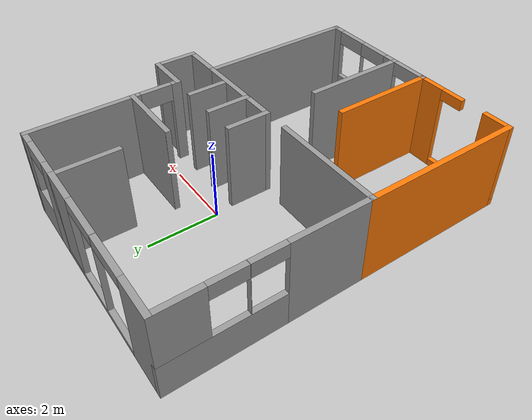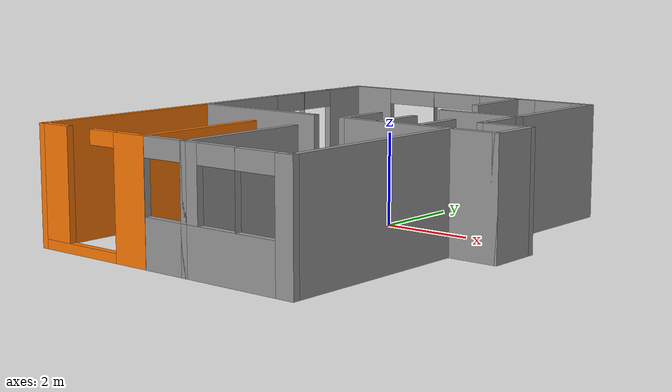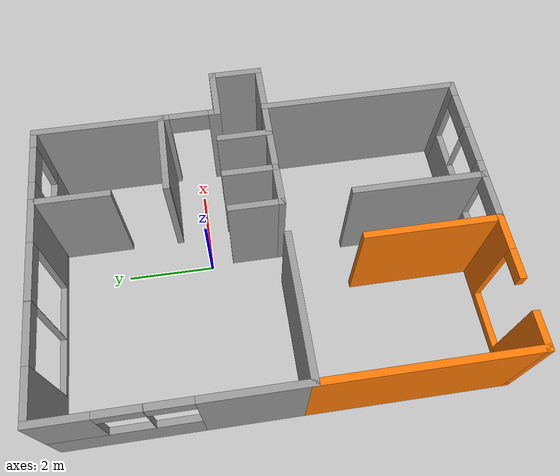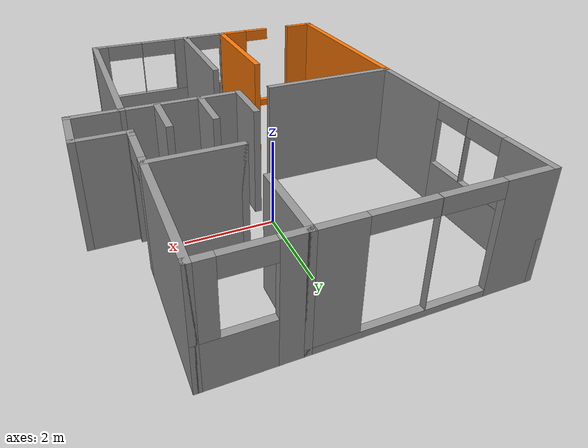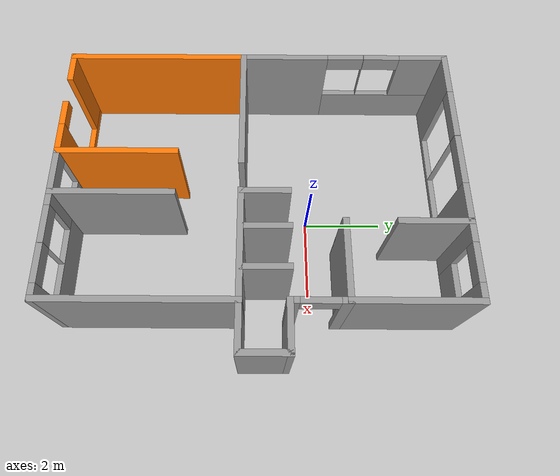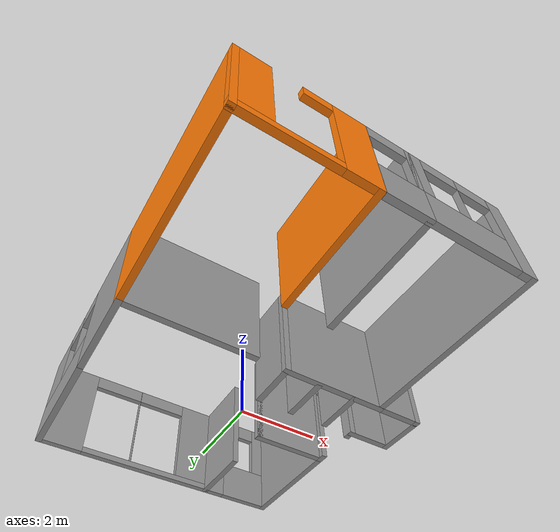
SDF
<?xml version='1.0'?>
<sdf version='1.6'>
  <model name='Berkach'>
    <pose frame=''>0.04 -1.29 0 0 -0 0</pose>
    <link name='Wall_0'>
      <collision name='Wall_0_Collision'>
        <geometry>
          <box>
            <size>4.6 0.15 2.5</size>
          </box>
        </geometry>
        <pose frame=''>0 0 1.25 0 -0 0</pose>
      </collision>
      <visual name='Wall_0_Visual'>
        <pose frame=''>0 0 1.25 0 -0 0</pose>
        <geometry>
          <box>
            <size>4.6 0.15 2.5</size>
          </box>
        </geometry>
        <material>
          <script>
            <uri>file://media/materials/scripts/gazebo.material</uri>
            <name>Gazebo/Grey</name>
          </script>
          <ambient>1 1 1 1</ambient>
        </material>
      </visual>
      <pose frame=''>2.7 -2.625 0 0 0 -1.5708</pose>
    </link>
    <link name='Wall_11'>
      <collision name='Wall_11_Collision'>
        <geometry>
          <box>
            <size>3 0.15 2.5</size>
          </box>
        </geometry>
        <pose frame=''>0 0 1.25 0 -0 0</pose>
      </collision>
      <visual name='Wall_11_Visual'>
        <pose frame=''>0 0 1.25 0 -0 0</pose>
        <geometry>
          <box>
            <size>3 0.15 2.5</size>
          </box>
        </geometry>
        <material>
          <script>
            <uri>file://media/materials/scripts/gazebo.material</uri>
            <name>Gazebo/Grey</name>
          </script>
          <ambient>0.996078 0.47451 0.0196078 1</ambient>
        </material>
      </visual>
      <pose frame=''>-0.95 -3.425 0 0 0 -1.5708</pose>
    </link>
    <link name='Wall_12'>
      <pose frame=''>-2.375 -4.85 0 0 -0 3.14159</pose>
      <visual name='Wall_12_Visual_0'>
        <pose frame=''>-1.0895 0 1.25 0 -0 0</pose>
        <geometry>
          <box>
            <size>0.820991 0.15 2.5</size>
          </box>
        </geometry>
        <material>
          <script>
            <uri>file://media/materials/scripts/gazebo.material</uri>
            <name>Gazebo/Grey</name>
          </script>
          <ambient>0.996078 0.47451 0.0196078 1</ambient>
        </material>
      </visual>
      <collision name='Wall_12_Collision_0'>
        <geometry>
          <box>
            <size>0.820991 0.15 2.5</size>
          </box>
        </geometry>
        <pose frame=''>-1.0895 0 1.25 0 -0 0</pose>
      </collision>
      <visual name='Wall_12_Visual_1'>
        <pose frame=''>0.410495 0 0.1 0 -0 0</pose>
        <geometry>
          <box>
            <size>2.17901 0.15 0.2</size>
          </box>
        </geometry>
        <material>
          <script>
            <uri>file://media/materials/scripts/gazebo.material</uri>
            <name>Gazebo/Grey</name>
          </script>
          <ambient>0.996078 0.47451 0.0196078 1</ambient>
        </material>
      </visual>
      <collision name='Wall_12_Collision_1'>
        <geometry>
          <box>
            <size>2.17901 0.15 0.2</size>
          </box>
        </geometry>
        <pose frame=''>0.410495 0 0.1 0 -0 0</pose>
      </collision>
      <visual name='Wall_12_Visual_2'>
        <pose frame=''>1.08284 0 1.35 0 -0 0</pose>
        <geometry>
          <box>
            <size>0.834315 0.15 2.3</size>
          </box>
        </geometry>
        <material>
          <script>
            <uri>file://media/materials/scripts/gazebo.material</uri>
            <name>Gazebo/Grey</name>
          </script>
          <ambient>0.996078 0.47451 0.0196078 1</ambient>
        </material>
      </visual>
      <collision name='Wall_12_Collision_2'>
        <geometry>
          <box>
            <size>0.834315 0.15 2.3</size>
          </box>
        </geometry>
        <pose frame=''>1.08284 0 1.35 0 -0 0</pose>
      </collision>
      <visual name='Wall_12_Visual_3'>
        <pose frame=''>-0.344162 0 2.35 0 -0 0</pose>
        <geometry>
          <box>
            <size>0.669694 0.15 0.3</size>
          </box>
        </geometry>
        <material>
          <script>
            <uri>file://media/materials/scripts/gazebo.material</uri>
            <name>Gazebo/Grey</name>
          </script>
          <ambient>0.996078 0.47451 0.0196078 1</ambient>
        </material>
      </visual>
      <collision name='Wall_12_Collision_3'>
        <geometry>
          <box>
            <size>0.669694 0.15 0.3</size>
          </box>
        </geometry>
        <pose frame=''>-0.344162 0 2.35 0 -0 0</pose>
      </collision>
    </link>
    <link name='Wall_13'>
      <collision name='Wall_13_Collision'>
        <geometry>
          <box>
            <size>4.6 0.15 2.5</size>
          </box>
        </geometry>
        <pose frame=''>0 0 1.25 0 -0 0</pose>
      </collision>
      <visual name='Wall_13_Visual'>
        <pose frame=''>0 0 1.25 0 -0 0</pose>
        <geometry>
          <box>
            <size>4.6 0.15 2.5</size>
          </box>
        </geometry>
        <material>
          <script>
            <uri>file://media/materials/scripts/gazebo.material</uri>
            <name>Gazebo/Grey</name>
          </script>
          <ambient>0.996078 0.47451 0.0196078 1</ambient>
        </material>
      </visual>
      <pose frame=''>-3.8 -2.625 0 0 -0 1.5708</pose>
    </link>
    <link name='Wall_15'>
      <collision name='Wall_15_Collision'>
        <geometry>
          <box>
            <size>3.25 0.15 2.5</size>
          </box>
        </geometry>
        <pose frame=''>0 0 1.25 0 -0 0</pose>
      </collision>
      <visual name='Wall_15_Visual'>
        <pose frame=''>0 0 1.25 0 -0 0</pose>
        <geometry>
          <box>
            <size>3.25 0.15 2.5</size>
          </box>
        </geometry>
        <material>
          <script>
            <uri>file://media/materials/scripts/gazebo.material</uri>
            <name>Gazebo/Grey</name>
          </script>
          <ambient>1 1 1 1</ambient>
        </material>
      </visual>
      <pose frame=''>-2.25 -0.4 0 0 -0 0</pose>
    </link>
    <link name='Wall_17'>
      <collision name='Wall_17_Collision'>
        <geometry>
          <box>
            <size>1.25 0.15 2.5</size>
          </box>
        </geometry>
        <pose frame=''>0 0 1.25 0 -0 0</pose>
      </collision>
      <visual name='Wall_17_Visual'>
        <pose frame=''>0 0 1.25 0 -0 0</pose>
        <geometry>
          <box>
            <size>1.25 0.15 2.5</size>
          </box>
        </geometry>
        <material>
          <script>
            <uri>file://media/materials/scripts/gazebo.material</uri>
            <name>Gazebo/Grey</name>
          </script>
          <ambient>1 1 1 1</ambient>
        </material>
      </visual>
      <pose frame=''>0.1 0.15 0 0 -0 1.5708</pose>
    </link>
    <link name='Wall_19'>
      <pose frame=''>-3.8 2.225 0 0 -0 1.5708</pose>
      <visual name='Wall_19_Visual_0'>
        <pose frame=''>-1.56095 0 1.25 0 -0 0</pose>
        <geometry>
          <box>
            <size>2.27809 0.15 2.5</size>
          </box>
        </geometry>
        <material>
          <script>
            <uri>file://media/materials/scripts/gazebo.material</uri>
            <name>Gazebo/Grey</name>
          </script>
          <ambient>1 1 1 1</ambient>
        </material>
      </visual>
      <collision name='Wall_19_Collision_0'>
        <geometry>
          <box>
            <size>2.27809 0.15 2.5</size>
          </box>
        </geometry>
        <pose frame=''>-1.56095 0 1.25 0 -0 0</pose>
      </collision>
      <visual name='Wall_19_Visual_1'>
        <pose frame=''>1.13905 0 0.5 0 -0 0</pose>
        <geometry>
          <box>
            <size>3.12191 0.15 1</size>
          </box>
        </geometry>
        <material>
          <script>
            <uri>file://media/materials/scripts/gazebo.material</uri>
            <name>Gazebo/Grey</name>
          </script>
          <ambient>1 1 1 1</ambient>
        </material>
      </visual>
      <collision name='Wall_19_Collision_1'>
        <geometry>
          <box>
            <size>3.12191 0.15 1</size>
          </box>
        </geometry>
        <pose frame=''>1.13905 0 0.5 0 -0 0</pose>
      </collision>
      <visual name='Wall_19_Visual_2'>
        <pose frame=''>0.51258 0 1.75 0 -0 0</pose>
        <geometry>
          <box>
            <size>0.008975 0.15 1.5</size>
          </box>
        </geometry>
        <material>
          <script>
            <uri>file://media/materials/scripts/gazebo.material</uri>
            <name>Gazebo/Grey</name>
          </script>
          <ambient>1 1 1 1</ambient>
        </material>
      </visual>
      <collision name='Wall_19_Collision_2'>
        <geometry>
          <box>
            <size>0.008975 0.15 1.5</size>
          </box>
        </geometry>
        <pose frame=''>0.51258 0 1.75 0 -0 0</pose>
      </collision>
      <visual name='Wall_19_Visual_3'>
        <pose frame=''>2.07353 0 1.75 0 -0 0</pose>
        <geometry>
          <box>
            <size>1.25293 0.15 1.5</size>
          </box>
        </geometry>
        <material>
          <script>
            <uri>file://media/materials/scripts/gazebo.material</uri>
            <name>Gazebo/Grey</name>
          </script>
          <ambient>1 1 1 1</ambient>
        </material>
      </visual>
      <collision name='Wall_19_Collision_3'>
        <geometry>
          <box>
            <size>1.25293 0.15 1.5</size>
          </box>
        </geometry>
        <pose frame=''>2.07353 0 1.75 0 -0 0</pose>
      </collision>
      <visual name='Wall_19_Visual_4'>
        <pose frame=''>0.043092 0 2.3 0 -0 0</pose>
        <geometry>
          <box>
            <size>0.93 0.15 0.4</size>
          </box>
        </geometry>
        <material>
          <script>
            <uri>file://media/materials/scripts/gazebo.material</uri>
            <name>Gazebo/Grey</name>
          </script>
          <ambient>1 1 1 1</ambient>
        </material>
      </visual>
      <collision name='Wall_19_Collision_4'>
        <geometry>
          <box>
            <size>0.93 0.15 0.4</size>
          </box>
        </geometry>
        <pose frame=''>0.043092 0 2.3 0 -0 0</pose>
      </collision>
      <visual name='Wall_19_Visual_5'>
        <pose frame=''>0.982067 0 2.3 0 -0 0</pose>
        <geometry>
          <box>
            <size>0.93 0.15 0.4</size>
          </box>
        </geometry>
        <material>
          <script>
            <uri>file://media/materials/scripts/gazebo.material</uri>
            <name>Gazebo/Grey</name>
          </script>
          <ambient>1 1 1 1</ambient>
        </material>
      </visual>
      <collision name='Wall_19_Collision_5'>
        <geometry>
          <box>
            <size>0.93 0.15 0.4</size>
          </box>
        </geometry>
        <pose frame=''>0.982067 0 2.3 0 -0 0</pose>
      </collision>
    </link>
    <link name='Wall_21'>
      <pose frame=''>-1.475 4.85 0 0 -0 0</pose>
      <visual name='Wall_21_Visual_0'>
        <pose frame=''>-1.82442 0 1.25 0 -0 0</pose>
        <geometry>
          <box>
            <size>1.15115 0.15 2.5</size>
          </box>
        </geometry>
        <material>
          <script>
            <uri>file://media/materials/scripts/gazebo.material</uri>
            <name>Gazebo/Grey</name>
          </script>
          <ambient>1 1 1 1</ambient>
        </material>
      </visual>
      <collision name='Wall_21_Collision_0'>
        <geometry>
          <box>
            <size>1.15115 0.15 2.5</size>
          </box>
        </geometry>
        <pose frame=''>-1.82442 0 1.25 0 -0 0</pose>
      </collision>
      <visual name='Wall_21_Visual_1'>
        <pose frame=''>0.575577 0 0.075 0 -0 0</pose>
        <geometry>
          <box>
            <size>3.64885 0.15 0.15</size>
          </box>
        </geometry>
        <material>
          <script>
            <uri>file://media/materials/scripts/gazebo.material</uri>
            <name>Gazebo/Grey</name>
          </script>
          <ambient>1 1 1 1</ambient>
        </material>
      </visual>
      <collision name='Wall_21_Collision_1'>
        <geometry>
          <box>
            <size>3.64885 0.15 0.15</size>
          </box>
        </geometry>
        <pose frame=''>0.575577 0 0.075 0 -0 0</pose>
      </collision>
      <visual name='Wall_21_Visual_2'>
        <pose frame=''>0.055791 0 1.325 0 -0 0</pose>
        <geometry>
          <box>
            <size>0.009275 0.15 2.35</size>
          </box>
        </geometry>
        <material>
          <script>
            <uri>file://media/materials/scripts/gazebo.material</uri>
            <name>Gazebo/Grey</name>
          </script>
          <ambient>1 1 1 1</ambient>
        </material>
      </visual>
      <collision name='Wall_21_Collision_2'>
        <geometry>
          <box>
            <size>0.009275 0.15 2.35</size>
          </box>
        </geometry>
        <pose frame=''>0.055791 0 1.325 0 -0 0</pose>
      </collision>
      <visual name='Wall_21_Visual_3'>
        <pose frame=''>1.88021 0 1.325 0 -0 0</pose>
        <geometry>
          <box>
            <size>1.03957 0.15 2.35</size>
          </box>
        </geometry>
        <material>
          <script>
            <uri>file://media/materials/scripts/gazebo.material</uri>
            <name>Gazebo/Grey</name>
          </script>
          <ambient>1 1 1 1</ambient>
        </material>
      </visual>
      <collision name='Wall_21_Collision_3'>
        <geometry>
          <box>
            <size>1.03957 0.15 2.35</size>
          </box>
        </geometry>
        <pose frame=''>1.88021 0 1.325 0 -0 0</pose>
      </collision>
      <visual name='Wall_21_Visual_4'>
        <pose frame=''>-0.598846 0 2.325 0 -0 0</pose>
        <geometry>
          <box>
            <size>1.3 0.15 0.35</size>
          </box>
        </geometry>
        <material>
          <script>
            <uri>file://media/materials/scripts/gazebo.material</uri>
            <name>Gazebo/Grey</name>
          </script>
          <ambient>1 1 1 1</ambient>
        </material>
      </visual>
      <collision name='Wall_21_Collision_4'>
        <geometry>
          <box>
            <size>1.3 0.15 0.35</size>
          </box>
        </geometry>
        <pose frame=''>-0.598846 0 2.325 0 -0 0</pose>
      </collision>
      <visual name='Wall_21_Visual_5'>
        <pose frame=''>0.710429 0 2.325 0 -0 0</pose>
        <geometry>
          <box>
            <size>1.3 0.15 0.35</size>
          </box>
        </geometry>
        <material>
          <script>
            <uri>file://media/materials/scripts/gazebo.material</uri>
            <name>Gazebo/Grey</name>
          </script>
          <ambient>1 1 1 1</ambient>
        </material>
      </visual>
      <collision name='Wall_21_Collision_5'>
        <geometry>
          <box>
            <size>1.3 0.15 0.35</size>
          </box>
        </geometry>
        <pose frame=''>0.710429 0 2.325 0 -0 0</pose>
      </collision>
    </link>
    <link name='Wall_24'>
      <collision name='Wall_24_Collision'>
        <geometry>
          <box>
            <size>0.15 0.15 2.5</size>
          </box>
        </geometry>
        <pose frame=''>0 0 1.25 0 -0 0</pose>
      </collision>
      <visual name='Wall_24_Visual'>
        <pose frame=''>0 0 1.25 0 -0 0</pose>
        <geometry>
          <box>
            <size>0.15 0.15 2.5</size>
          </box>
        </geometry>
        <material>
          <script>
            <uri>file://media/materials/scripts/gazebo.material</uri>
            <name>Gazebo/Grey</name>
          </script>
          <ambient>1 1 1 1</ambient>
        </material>
      </visual>
      <pose frame=''>0.85 2 0 0 -0 0</pose>
    </link>
    <link name='Wall_25'>
      <collision name='Wall_25_Collision'>
        <geometry>
          <box>
            <size>2 0.15 2.5</size>
          </box>
        </geometry>
        <pose frame=''>0 0 1.25 0 -0 0</pose>
      </collision>
      <visual name='Wall_25_Visual'>
        <pose frame=''>0 0 1.25 0 -0 0</pose>
        <geometry>
          <box>
            <size>2 0.15 2.5</size>
          </box>
        </geometry>
        <material>
          <script>
            <uri>file://media/materials/scripts/gazebo.material</uri>
            <name>Gazebo/Grey</name>
          </script>
          <ambient>1 1 1 1</ambient>
        </material>
      </visual>
      <pose frame=''>1.775 2 0 0 -0 0</pose>
    </link>
    <link name='Wall_27'>
      <collision name='Wall_27_Collision'>
        <geometry>
          <box>
            <size>1.75 0.15 2.5</size>
          </box>
        </geometry>
        <pose frame=''>0 0 1.25 0 -0 0</pose>
      </collision>
      <visual name='Wall_27_Visual'>
        <pose frame=''>0 0 1.25 0 -0 0</pose>
        <geometry>
          <box>
            <size>1.75 0.15 2.5</size>
          </box>
        </geometry>
        <material>
          <script>
            <uri>file://media/materials/scripts/gazebo.material</uri>
            <name>Gazebo/Grey</name>
          </script>
          <ambient>1 1 1 1</ambient>
        </material>
      </visual>
      <pose frame=''>0.85 4.05 0 0 0 -1.5708</pose>
    </link>
    <link name='Wall_29'>
      <pose frame=''>1.775 4.85 0 0 -0 0</pose>
      <visual name='Wall_29_Visual_0'>
        <pose frame=''>-0.706629 0 1.25 0 -0 0</pose>
        <geometry>
          <box>
            <size>0.586741 0.15 2.5</size>
          </box>
        </geometry>
        <material>
          <script>
            <uri>file://media/materials/scripts/gazebo.material</uri>
            <name>Gazebo/Grey</name>
          </script>
          <ambient>1 1 1 1</ambient>
        </material>
      </visual>
      <collision name='Wall_29_Collision_0'>
        <geometry>
          <box>
            <size>0.586741 0.15 2.5</size>
          </box>
        </geometry>
        <pose frame=''>-0.706629 0 1.25 0 -0 0</pose>
      </collision>
      <visual name='Wall_29_Visual_1'>
        <pose frame=''>0.293371 0 0.5 0 -0 0</pose>
        <geometry>
          <box>
            <size>1.41326 0.15 1</size>
          </box>
        </geometry>
        <material>
          <script>
            <uri>file://media/materials/scripts/gazebo.material</uri>
            <name>Gazebo/Grey</name>
          </script>
          <ambient>1 1 1 1</ambient>
        </material>
      </visual>
      <collision name='Wall_29_Collision_1'>
        <geometry>
          <box>
            <size>1.41326 0.15 1</size>
          </box>
        </geometry>
        <pose frame=''>0.293371 0 0.5 0 -0 0</pose>
      </collision>
      <visual name='Wall_29_Visual_2'>
        <pose frame=''>0.758371 0 1.75 0 -0 0</pose>
        <geometry>
          <box>
            <size>0.483259 0.15 1.5</size>
          </box>
        </geometry>
        <material>
          <script>
            <uri>file://media/materials/scripts/gazebo.material</uri>
            <name>Gazebo/Grey</name>
          </script>
          <ambient>1 1 1 1</ambient>
        </material>
      </visual>
      <collision name='Wall_29_Collision_2'>
        <geometry>
          <box>
            <size>0.483259 0.15 1.5</size>
          </box>
        </geometry>
        <pose frame=''>0.758371 0 1.75 0 -0 0</pose>
      </collision>
      <visual name='Wall_29_Visual_3'>
        <pose frame=''>0.051741 0 2.3 0 -0 0</pose>
        <geometry>
          <box>
            <size>0.93 0.15 0.4</size>
          </box>
        </geometry>
        <material>
          <script>
            <uri>file://media/materials/scripts/gazebo.material</uri>
            <name>Gazebo/Grey</name>
          </script>
          <ambient>1 1 1 1</ambient>
        </material>
      </visual>
      <collision name='Wall_29_Collision_3'>
        <geometry>
          <box>
            <size>0.93 0.15 0.4</size>
          </box>
        </geometry>
        <pose frame=''>0.051741 0 2.3 0 -0 0</pose>
      </collision>
    </link>
    <link name='Wall_3'>
      <pose frame=''>1.425 -4.85 0 0 -0 3.14159</pose>
      <visual name='Wall_3_Visual_0'>
        <pose frame=''>-1.14533 0 1.25 0 -0 0</pose>
        <geometry>
          <box>
            <size>0.409344 0.15 2.5</size>
          </box>
        </geometry>
        <material>
          <script>
            <uri>file://media/materials/scripts/gazebo.material</uri>
            <name>Gazebo/Grey</name>
          </script>
          <ambient>1 1 1 1</ambient>
        </material>
      </visual>
      <collision name='Wall_3_Collision_0'>
        <geometry>
          <box>
            <size>0.409344 0.15 2.5</size>
          </box>
        </geometry>
        <pose frame=''>-1.14533 0 1.25 0 -0 0</pose>
      </collision>
      <visual name='Wall_3_Visual_1'>
        <pose frame=''>0.204672 0 0.5 0 -0 0</pose>
        <geometry>
          <box>
            <size>2.29066 0.15 1</size>
          </box>
        </geometry>
        <material>
          <script>
            <uri>file://media/materials/scripts/gazebo.material</uri>
            <name>Gazebo/Grey</name>
          </script>
          <ambient>1 1 1 1</ambient>
        </material>
      </visual>
      <collision name='Wall_3_Collision_1'>
        <geometry>
          <box>
            <size>2.29066 0.15 1</size>
          </box>
        </geometry>
        <pose frame=''>0.204672 0 0.5 0 -0 0</pose>
      </collision>
      <visual name='Wall_3_Visual_2'>
        <pose frame=''>-0.010192 0 1.75 0 -0 0</pose>
        <geometry>
          <box>
            <size>0.000928 0.15 1.5</size>
          </box>
        </geometry>
        <material>
          <script>
            <uri>file://media/materials/scripts/gazebo.material</uri>
            <name>Gazebo/Grey</name>
          </script>
          <ambient>1 1 1 1</ambient>
        </material>
      </visual>
      <collision name='Wall_3_Collision_2'>
        <geometry>
          <box>
            <size>0.000928 0.15 1.5</size>
          </box>
        </geometry>
        <pose frame=''>-0.010192 0 1.75 0 -0 0</pose>
      </collision>
      <visual name='Wall_3_Visual_3'>
        <pose frame=''>1.13514 0 1.75 0 -0 0</pose>
        <geometry>
          <box>
            <size>0.429728 0.15 1.5</size>
          </box>
        </geometry>
        <material>
          <script>
            <uri>file://media/materials/scripts/gazebo.material</uri>
            <name>Gazebo/Grey</name>
          </script>
          <ambient>1 1 1 1</ambient>
        </material>
      </visual>
      <collision name='Wall_3_Collision_3'>
        <geometry>
          <box>
            <size>0.429728 0.15 1.5</size>
          </box>
        </geometry>
        <pose frame=''>1.13514 0 1.75 0 -0 0</pose>
      </collision>
      <visual name='Wall_3_Visual_4'>
        <pose frame=''>-0.475656 0 2.3 0 -0 0</pose>
        <geometry>
          <box>
            <size>0.93 0.15 0.4</size>
          </box>
        </geometry>
        <material>
          <script>
            <uri>file://media/materials/scripts/gazebo.material</uri>
            <name>Gazebo/Grey</name>
          </script>
          <ambient>1 1 1 1</ambient>
        </material>
      </visual>
      <collision name='Wall_3_Collision_4'>
        <geometry>
          <box>
            <size>0.93 0.15 0.4</size>
          </box>
        </geometry>
        <pose frame=''>-0.475656 0 2.3 0 -0 0</pose>
      </collision>
      <visual name='Wall_3_Visual_5'>
        <pose frame=''>0.455272 0 2.3 0 -0 0</pose>
        <geometry>
          <box>
            <size>0.93 0.15 0.4</size>
          </box>
        </geometry>
        <material>
          <script>
            <uri>file://media/materials/scripts/gazebo.material</uri>
            <name>Gazebo/Grey</name>
          </script>
          <ambient>1 1 1 1</ambient>
        </material>
      </visual>
      <collision name='Wall_3_Collision_5'>
        <geometry>
          <box>
            <size>0.93 0.15 0.4</size>
          </box>
        </geometry>
        <pose frame=''>0.455272 0 2.3 0 -0 0</pose>
      </collision>
    </link>
    <link name='Wall_30'>
      <collision name='Wall_30_Collision'>
        <geometry>
          <box>
            <size>3 0.15 2.5</size>
          </box>
        </geometry>
        <pose frame=''>0 0 1.25 0 -0 0</pose>
      </collision>
      <visual name='Wall_30_Visual'>
        <pose frame=''>0 0 1.25 0 -0 0</pose>
        <geometry>
          <box>
            <size>3 0.15 2.5</size>
          </box>
        </geometry>
        <material>
          <script>
            <uri>file://media/materials/scripts/gazebo.material</uri>
            <name>Gazebo/Grey</name>
          </script>
          <ambient>1 1 1 1</ambient>
        </material>
      </visual>
      <pose frame=''>2.7 3.425 0 0 0 -1.5708</pose>
    </link>
    <link name='Wall_34'>
      <pose frame=''>-0.4 -4.85 0 0 -0 0</pose>
      <visual name='Wall_34_Visual_0'>
        <pose frame=''>-0.547248 0 1.25 0 -0 0</pose>
        <geometry>
          <box>
            <size>0.155503 0.15 2.5</size>
          </box>
        </geometry>
        <material>
          <script>
            <uri>file://media/materials/scripts/gazebo.material</uri>
            <name>Gazebo/Grey</name>
          </script>
          <ambient>1 1 1 1</ambient>
        </material>
      </visual>
      <collision name='Wall_34_Collision_0'>
        <geometry>
          <box>
            <size>0.155503 0.15 2.5</size>
          </box>
        </geometry>
        <pose frame=''>-0.547248 0 1.25 0 -0 0</pose>
      </collision>
      <visual name='Wall_34_Visual_1'>
        <pose frame=''>0.077752 0 0.5 0 -0 0</pose>
        <geometry>
          <box>
            <size>1.0945 0.15 1</size>
          </box>
        </geometry>
        <material>
          <script>
            <uri>file://media/materials/scripts/gazebo.material</uri>
            <name>Gazebo/Grey</name>
          </script>
          <ambient>1 1 1 1</ambient>
        </material>
      </visual>
      <collision name='Wall_34_Collision_1'>
        <geometry>
          <box>
            <size>1.0945 0.15 1</size>
          </box>
        </geometry>
        <pose frame=''>0.077752 0 0.5 0 -0 0</pose>
      </collision>
      <visual name='Wall_34_Visual_2'>
        <pose frame=''>0.552752 0 1.75 0 -0 0</pose>
        <geometry>
          <box>
            <size>0.144497 0.15 1.5</size>
          </box>
        </geometry>
        <material>
          <script>
            <uri>file://media/materials/scripts/gazebo.material</uri>
            <name>Gazebo/Grey</name>
          </script>
          <ambient>1 1 1 1</ambient>
        </material>
      </visual>
      <collision name='Wall_34_Collision_2'>
        <geometry>
          <box>
            <size>0.144497 0.15 1.5</size>
          </box>
        </geometry>
        <pose frame=''>0.552752 0 1.75 0 -0 0</pose>
      </collision>
      <visual name='Wall_34_Visual_3'>
        <pose frame=''>0.005503 0 2.3 0 -0 0</pose>
        <geometry>
          <box>
            <size>0.95 0.15 0.4</size>
          </box>
        </geometry>
        <material>
          <script>
            <uri>file://media/materials/scripts/gazebo.material</uri>
            <name>Gazebo/Grey</name>
          </script>
          <ambient>1 1 1 1</ambient>
        </material>
      </visual>
      <collision name='Wall_34_Collision_3'>
        <geometry>
          <box>
            <size>0.95 0.15 0.4</size>
          </box>
        </geometry>
        <pose frame=''>0.005503 0 2.3 0 -0 0</pose>
      </collision>
    </link>
    <link name='Wall_36'>
      <collision name='Wall_36_Collision'>
        <geometry>
          <box>
            <size>1.25 0.15 2.5</size>
          </box>
        </geometry>
        <pose frame=''>0 0 1.25 0 -0 0</pose>
      </collision>
      <visual name='Wall_36_Visual'>
        <pose frame=''>0 0 1.25 0 -0 0</pose>
        <geometry>
          <box>
            <size>1.25 0.15 2.5</size>
          </box>
        </geometry>
        <material>
          <script>
            <uri>file://media/materials/scripts/gazebo.material</uri>
            <name>Gazebo/Grey</name>
          </script>
          <ambient>1 1 1 1</ambient>
        </material>
      </visual>
      <pose frame=''>0.987218 0.166389 0 0 0 -1.5708</pose>
    </link>
    <link name='Wall_38'>
      <collision name='Wall_38_Collision'>
        <geometry>
          <box>
            <size>1.25 0.15 2.5</size>
          </box>
        </geometry>
        <pose frame=''>0 0 1.25 0 -0 0</pose>
      </collision>
      <visual name='Wall_38_Visual'>
        <pose frame=''>0 0 1.25 0 -0 0</pose>
        <geometry>
          <box>
            <size>1.25 0.15 2.5</size>
          </box>
        </geometry>
        <material>
          <script>
            <uri>file://media/materials/scripts/gazebo.material</uri>
            <name>Gazebo/Grey</name>
          </script>
          <ambient>1 1 1 1</ambient>
        </material>
      </visual>
      <pose frame=''>1.94917 0.164515 0 0 -0 1.5708</pose>
    </link>
    <link name='Wall_40'>
      <collision name='Wall_40_Collision'>
        <geometry>
          <box>
            <size>1.25 0.15 2.5</size>
          </box>
        </geometry>
        <pose frame=''>0 0 1.25 0 -0 0</pose>
      </collision>
      <visual name='Wall_40_Visual'>
        <pose frame=''>0 0 1.25 0 -0 0</pose>
        <geometry>
          <box>
            <size>1.25 0.15 2.5</size>
          </box>
        </geometry>
        <material>
          <script>
            <uri>file://media/materials/scripts/gazebo.material</uri>
            <name>Gazebo/Grey</name>
          </script>
          <ambient>1 1 1 1</ambient>
        </material>
      </visual>
      <pose frame=''>3.25 -0.4 0 0 -0 0</pose>
    </link>
    <link name='Wall_41'>
      <collision name='Wall_41_Collision'>
        <geometry>
          <box>
            <size>1.25 0.15 2.5</size>
          </box>
        </geometry>
        <pose frame=''>0 0 1.25 0 -0 0</pose>
      </collision>
      <visual name='Wall_41_Visual'>
        <pose frame=''>0 0 1.25 0 -0 0</pose>
        <geometry>
          <box>
            <size>1.25 0.15 2.5</size>
          </box>
        </geometry>
        <material>
          <script>
            <uri>file://media/materials/scripts/gazebo.material</uri>
            <name>Gazebo/Grey</name>
          </script>
          <ambient>1 1 1 1</ambient>
        </material>
      </visual>
      <pose frame=''>3.8 0.15 0 0 -0 1.5708</pose>
    </link>
    <link name='Wall_43'>
      <collision name='Wall_43_Collision'>
        <geometry>
          <box>
            <size>1.25 0.15 2.5</size>
          </box>
        </geometry>
        <pose frame=''>0 0 1.25 0 -0 0</pose>
      </collision>
      <visual name='Wall_43_Visual'>
        <pose frame=''>0 0 1.25 0 -0 0</pose>
        <geometry>
          <box>
            <size>1.25 0.15 2.5</size>
          </box>
        </geometry>
        <material>
          <script>
            <uri>file://media/materials/scripts/gazebo.material</uri>
            <name>Gazebo/Grey</name>
          </script>
          <ambient>1 1 1 1</ambient>
        </material>
      </visual>
      <pose frame=''>3.25 0.7 0 0 -0 3.14159</pose>
    </link>
    <link name='Wall_45'>
      <pose frame=''>2.7 1.35 0 0 0 -1.5708</pose>
      <visual name='Wall_45_Visual_0'>
        <pose frame=''>-0.590284 0 1.25 0 -0 0</pose>
        <geometry>
          <box>
            <size>0.269433 0.15 2.5</size>
          </box>
        </geometry>
        <material>
          <script>
            <uri>file://media/materials/scripts/gazebo.material</uri>
            <name>Gazebo/Grey</name>
          </script>
          <ambient>1 1 1 1</ambient>
        </material>
      </visual>
      <collision name='Wall_45_Collision_0'>
        <geometry>
          <box>
            <size>0.269433 0.15 2.5</size>
          </box>
        </geometry>
        <pose frame=''>-0.590284 0 1.25 0 -0 0</pose>
      </collision>
      <visual name='Wall_45_Visual_1'>
        <pose frame=''>0.584716 0 1.25 0 -0 0</pose>
        <geometry>
          <box>
            <size>0.280567 0.15 2.5</size>
          </box>
        </geometry>
        <material>
          <script>
            <uri>file://media/materials/scripts/gazebo.material</uri>
            <name>Gazebo/Grey</name>
          </script>
          <ambient>1 1 1 1</ambient>
        </material>
      </visual>
      <collision name='Wall_45_Collision_1'>
        <geometry>
          <box>
            <size>0.280567 0.15 2.5</size>
          </box>
        </geometry>
        <pose frame=''>0.584716 0 1.25 0 -0 0</pose>
      </collision>
      <visual name='Wall_45_Visual_2'>
        <pose frame=''>-0.005567 0 2.25 0 -0 0</pose>
        <geometry>
          <box>
            <size>0.9 0.15 0.5</size>
          </box>
        </geometry>
        <material>
          <script>
            <uri>file://media/materials/scripts/gazebo.material</uri>
            <name>Gazebo/Grey</name>
          </script>
          <ambient>1 1 1 1</ambient>
        </material>
      </visual>
      <collision name='Wall_45_Collision_2'>
        <geometry>
          <box>
            <size>0.9 0.15 0.5</size>
          </box>
        </geometry>
        <pose frame=''>-0.005567 0 2.25 0 -0 0</pose>
      </collision>
    </link>
    <link name='Wall_6'>
      <collision name='Wall_6_Collision'>
        <geometry>
          <box>
            <size>3 0.15 2.5</size>
          </box>
        </geometry>
        <pose frame=''>0 0 1.25 0 -0 0</pose>
      </collision>
      <visual name='Wall_6_Visual'>
        <pose frame=''>0 0 1.25 0 -0 0</pose>
        <geometry>
          <box>
            <size>3 0.15 2.5</size>
          </box>
        </geometry>
        <material>
          <script>
            <uri>file://media/materials/scripts/gazebo.material</uri>
            <name>Gazebo/Grey</name>
          </script>
          <ambient>1 1 1 1</ambient>
        </material>
      </visual>
      <pose frame=''>0.15 -3.425 0 0 -0 1.5708</pose>
    </link>
    <link name='Wall_8'>
      <collision name='Wall_8_Collision'>
        <geometry>
          <box>
            <size>2.75 0.15 2.5</size>
          </box>
        </geometry>
        <pose frame=''>0 0 1.25 0 -0 0</pose>
      </collision>
      <visual name='Wall_8_Visual'>
        <pose frame=''>0 0 1.25 0 -0 0</pose>
        <geometry>
          <box>
            <size>2.75 0.15 2.5</size>
          </box>
        </geometry>
        <material>
          <script>
            <uri>file://media/materials/scripts/gazebo.material</uri>
            <name>Gazebo/Grey</name>
          </script>
          <ambient>1 1 1 1</ambient>
        </material>
      </visual>
      <pose frame=''>1.4 -0.4 0 0 -0 3.14159</pose>
    </link>
    <static>1</static>
  </model>
</sdf>
